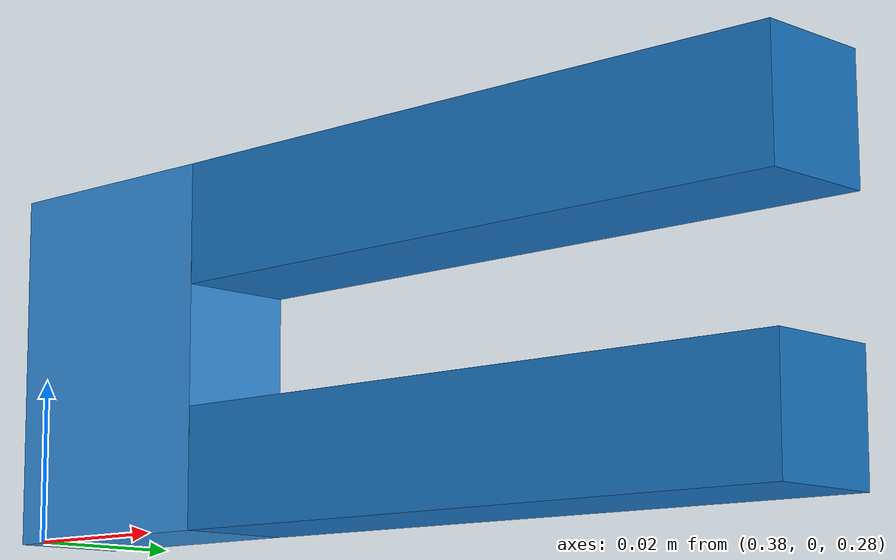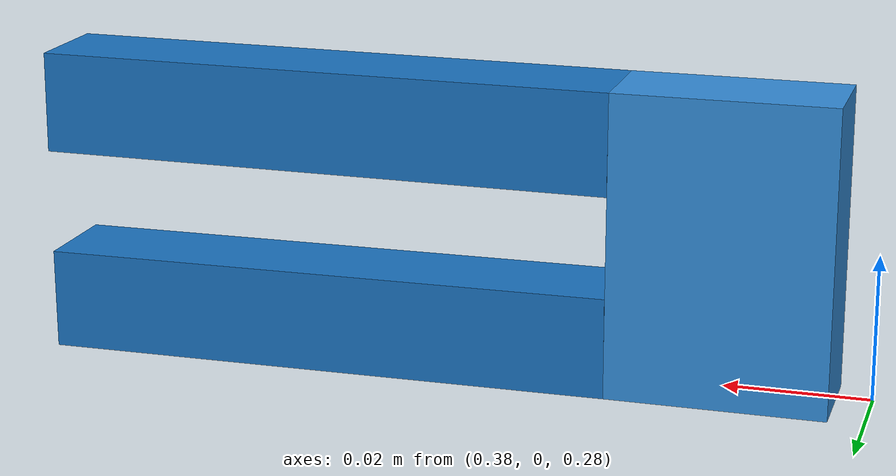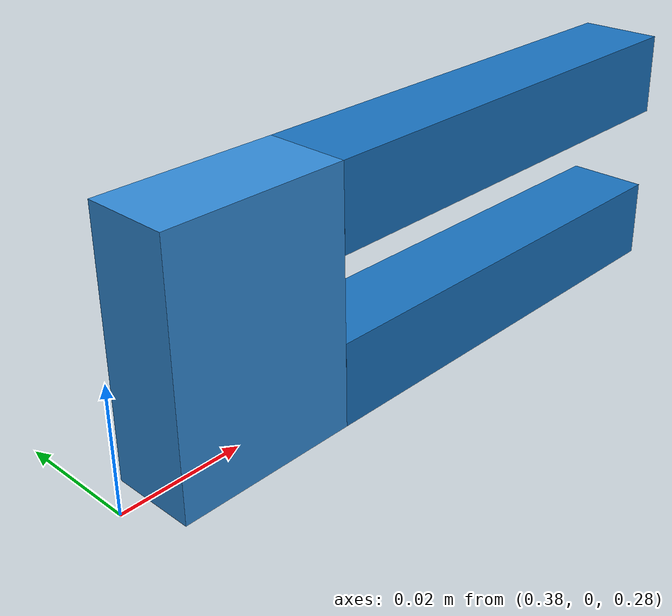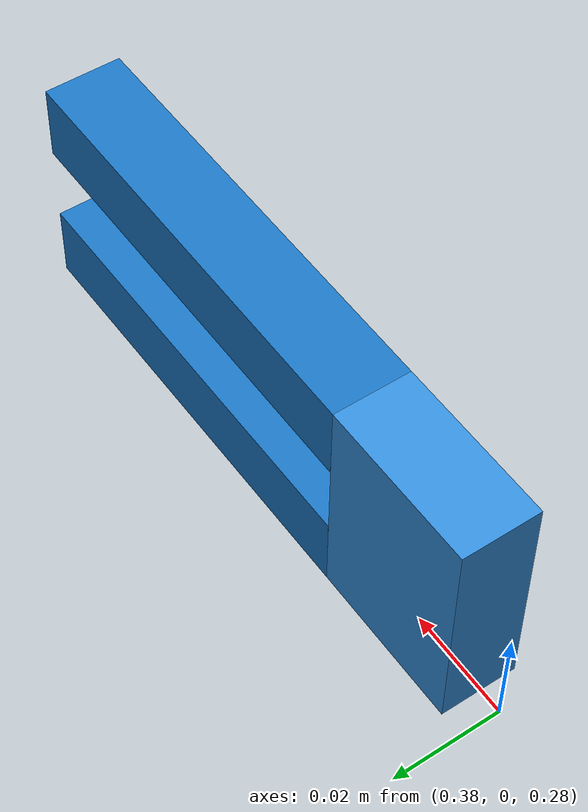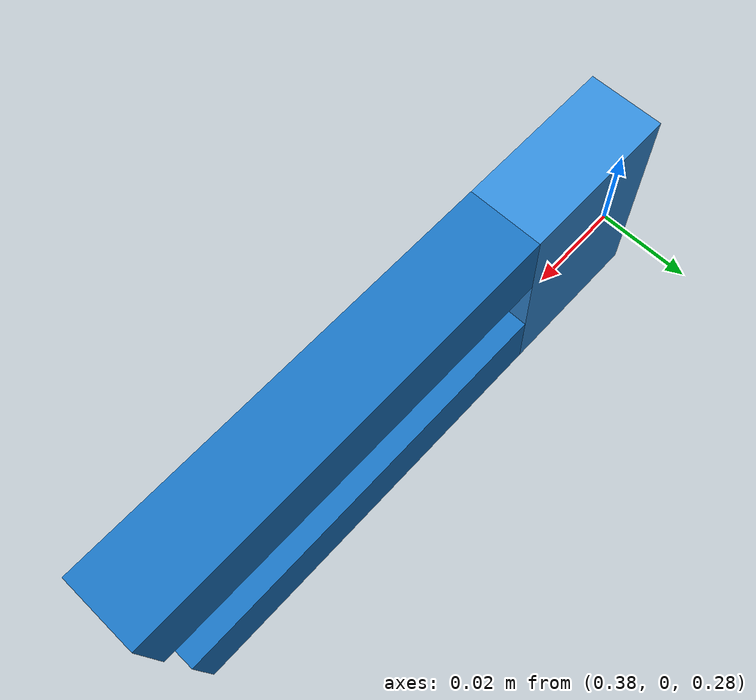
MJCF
<?xml version="1.0"?>
<mujoco model="snap_peg">
  <worldbody>
    <body name="snap_peg" pos="0.4 0 0.3">
      <freejoint name="snap_peg_joint"/>

      <!-- ===== Base cuboid (gripped by gripper). Clamping along world Y (14 mm).
           Cross-section 1:3 (Y:Z) = 14 × 42 mm. ===== -->
      <geom type="box" name="snap_peg_base"
            size="0.015 0.007 0.021"
            pos="0 0 0"
            mass="0.020" rgba="0.20 0.55 0.85 1.0"
            condim="4" friction="3 0.1 0.01"
            contype="1" conaffinity="1"
            solref="0.01 1" solimp="0.95 0.99 0.001 0.5 2"/>

      <!-- ===== Sites on the rigid part (base) ===== -->
      <site name="object_site"   pos="0 0 0"      size="0.0008" rgba="1 1 1 1" group="4"/>
      <site name="base_back"     pos="-0.015 0 0" size="0.0008" rgba="1 1 1 1" group="4"/>

      <body name="lip_top" pos="0.015 0 0.014" euler="0 -0.244 0">
        <joint name="lip_top_hinge" type="hinge" axis="0 1 0"
               range="-0.45 0" limited="true"
               springref="0" stiffness="20.0" damping="1.0"
               armature="0.0001"
               solreflimit="0.005 1" solimplimit="0.99 0.999 0.001 0.5 2"/>
        <!-- Cuboid arm: 40 mm long along body-+X, 14 × 14 mm cross-section.
             Centered at x=+0.020 so it spans x∈[0, 0.040]. -->
        <geom type="box" name="lip_top_arm"
              size="0.040 0.007 0.007"
              pos="0.040 0 0"
              mass="0.0010" rgba="0.10 0.45 0.75 1.0"
              condim="4" friction="3 0.1 0.01"
              contype="1" conaffinity="1"
              solref="0.01 1" solimp="0.95 0.99 0.001 0.5 2"/>
        <!-- No latch sphere — the bare cuboid arm is the contact surface.
             The socket blocker sphere catches on the +X end of the arm. -->

        <site name="lip_top_pivot" pos="0 0 0"         size="0.0008" rgba="1 0.5 0 1" group="4"/>
        <!-- Tip site at the front-outer corner of the arm (+X, +Z face). -->
        <site name="lip_top_tip"   pos="0.080 0 0.007" size="0.0008" rgba="1 0.5 0 1" group="4"/>
      </body>

      <!-- ===== Bottom prong: mirror of top prong ===== -->
      <body name="lip_bot" pos="0.015 0 -0.014" euler="0 0.244 0">
        <joint name="lip_bot_hinge" type="hinge" axis="0 1 0"
               range="0 0.45" limited="true"
               springref="0" stiffness="20.0" damping="1.0"
               armature="0.0001"
               solreflimit="0.005 1" solimplimit="0.99 0.999 0.001 0.5 2"/>
        <geom type="box" name="lip_bot_arm"
              size="0.040 0.007 0.007"
              pos="0.040 0 0"
              mass="0.0010" rgba="0.10 0.45 0.75 1.0"
              condim="4" friction="3 0.1 0.01"
              contype="1" conaffinity="1"
              solref="0.01 1" solimp="0.95 0.99 0.001 0.5 2"/>
        <!-- No latch sphere — bare cuboid arm. -->

        <site name="lip_bot_pivot" pos="0 0 0"          size="0.0008" rgba="1 0.5 0 1" group="4"/>
        <site name="lip_bot_tip"   pos="0.080 0 -0.007" size="0.0008" rgba="1 0.5 0 1" group="4"/>
      </body>
    </body>
  </worldbody>
</mujoco>
